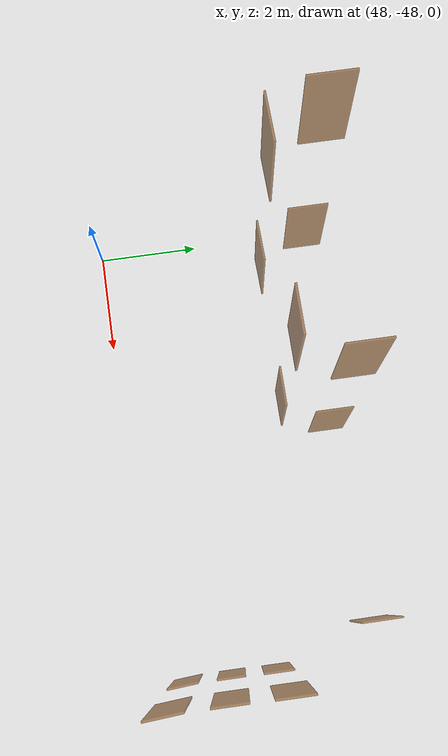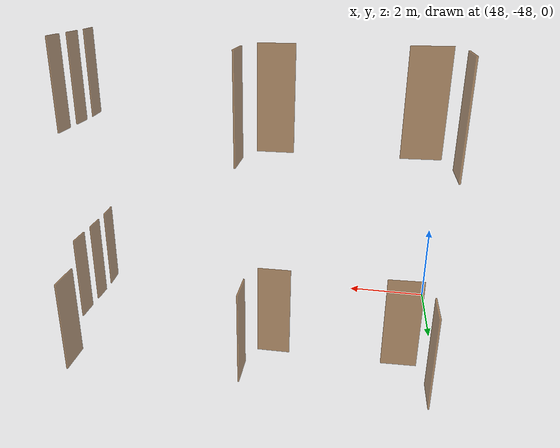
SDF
<sdf version="1.7">
 <world name="sim_world">
  <model name="null19">
   <pose>48.2611852223337 -43.68580500761547 0.0 0 0 1.5707963267948966</pose>
   <link name="right">
    <pose>0 0 1.11 0 0 0</pose>
    <visual name="right_visual">
     <geometry><box><size>0.796915190014486 0.03 2.2</size></box></geometry>
     <material>
      <ambient>0.5 0.25 0 0.6</ambient>
      <diffuse>0.5 0.25 0 0.6</diffuse>
      <pbr><metal><metalness>0.0</metalness></metal></pbr>
     </material>
    </visual>
    <collision name="right_collision">
     <geometry><box><size>0.796915190014486 0.03 2.2</size></box></geometry>
     <surface><contact><collide_bitmask>0x02</collide_bitmask></contact></surface>
    </collision>
    <inertial>
     <mass>50.0</mass>
     <inertia><ixx>20.17041666666667</ixx><iyy>22.812807583649274</iyy><izz>2.6498909169826015</izz></inertia>
    </inertial>
   </link>
   <joint name="right_joint" type="revolute">
    <parent>world</parent>
    <child>right</child>
    <axis><xyz>0 0 -1</xyz><limit><lower>0</lower><upper>1.57</upper></limit></axis>
    <pose>0.403457595007243 0 0 0 0 0</pose>
   </joint>
   <plugin name="register_component" filename="libregister_component.so">
    <component name="Door">
     <v_max_door>0.5</v_max_door>
     <a_max_door>0.3</a_max_door>
     <a_nom_door>0.15</a_nom_door>
     <dx_min_door>0.01</dx_min_door>
     <f_max_door>500.0</f_max_door>
     <ros_interface>true</ros_interface>
     <door name="null19" type="SwingDoor" left_joint_name="empty_joint" right_joint_name="right_joint"/>
    </component>
   </plugin>
  </model>
  <model name="null20">
   <pose>48.8182007132509 -44.70042302834432 0.0 0 0 -3.0972892206543503</pose>
   <link name="right">
    <pose>0 0 1.11 0 0 0</pose>
    <visual name="right_visual">
     <geometry><box><size>0.8088253046427424 0.03 2.2</size></box></geometry>
     <material>
      <ambient>0.5 0.25 0 0.6</ambient>
      <diffuse>0.5 0.25 0 0.6</diffuse>
      <pbr><metal><metalness>0.0</metalness></metal></pbr>
     </material>
    </visual>
    <collision name="right_collision">
     <geometry><box><size>0.8088253046427424 0.03 2.2</size></box></geometry>
     <surface><contact><collide_bitmask>0x02</collide_bitmask></contact></surface>
    </collision>
    <inertial>
     <mass>50.0</mass>
     <inertia><ixx>20.17041666666667</ixx><iyy>22.892493222626776</iyy><izz>2.7295765559601044</izz></inertia>
    </inertial>
   </link>
   <joint name="right_joint" type="revolute">
    <parent>world</parent>
    <child>right</child>
    <axis><xyz>0 0 -1</xyz><limit><lower>0</lower><upper>1.57</upper></limit></axis>
    <pose>0.4094126523213712 0 0 0 0 0</pose>
   </joint>
   <plugin name="register_component" filename="libregister_component.so">
    <component name="Door">
     <v_max_door>0.5</v_max_door>
     <a_max_door>0.3</a_max_door>
     <a_nom_door>0.15</a_nom_door>
     <dx_min_door>0.01</dx_min_door>
     <f_max_door>500.0</f_max_door>
     <ros_interface>true</ros_interface>
     <door name="null20" type="SwingDoor" left_joint_name="empty_joint" right_joint_name="right_joint"/>
    </component>
   </plugin>
  </model>
  <model name="null21">
   <pose>51.75311982243029 -44.69091505999482 0.0 0 0 -3.123357482783802</pose>
   <link name="right">
    <pose>0 0 1.11 0 0 0</pose>
    <visual name="right_visual">
     <geometry><box><size>0.7636958146948669 0.03 2.2</size></box></geometry>
     <material>
      <ambient>0.5 0.25 0 0.6</ambient>
      <diffuse>0.5 0.25 0 0.6</diffuse>
      <pbr><metal><metalness>0.0</metalness></metal></pbr>
     </material>
    </visual>
    <collision name="right_collision">
     <geometry><box><size>0.7636958146948669 0.03 2.2</size></box></geometry>
     <surface><contact><collide_bitmask>0x02</collide_bitmask></contact></surface>
    </collision>
    <inertial>
     <mass>50.0</mass>
     <inertia><ixx>20.17041666666667</ixx><iyy>22.59679707242691</iyy><izz>2.4338804057602355</izz></inertia>
    </inertial>
   </link>
   <joint name="right_joint" type="revolute">
    <parent>world</parent>
    <child>right</child>
    <axis><xyz>0 0 -1</xyz><limit><lower>0</lower><upper>1.57</upper></limit></axis>
    <pose>0.38684790734743346 0 0 0 0 0</pose>
   </joint>
   <plugin name="register_component" filename="libregister_component.so">
    <component name="Door">
     <v_max_door>0.5</v_max_door>
     <a_max_door>0.3</a_max_door>
     <a_nom_door>0.15</a_nom_door>
     <dx_min_door>0.01</dx_min_door>
     <f_max_door>500.0</f_max_door>
     <ros_interface>true</ros_interface>
     <door name="null21" type="SwingDoor" left_joint_name="empty_joint" right_joint_name="right_joint"/>
    </component>
   </plugin>
  </model>
  <model name="null22">
   <pose>52.343188825736505 -43.78970550540514 0.0 0 0 -1.5707963267948966</pose>
   <link name="right">
    <pose>0 0 1.11 0 0 0</pose>
    <visual name="right_visual">
     <geometry><box><size>0.7216087150339925 0.03 2.2</size></box></geometry>
     <material>
      <ambient>0.5 0.25 0 0.6</ambient>
      <diffuse>0.5 0.25 0 0.6</diffuse>
      <pbr><metal><metalness>0.0</metalness></metal></pbr>
     </material>
    </visual>
    <collision name="right_collision">
     <geometry><box><size>0.7216087150339925 0.03 2.2</size></box></geometry>
     <surface><contact><collide_bitmask>0x02</collide_bitmask></contact></surface>
    </collision>
    <inertial>
     <mass>50.0</mass>
     <inertia><ixx>20.17041666666667</ixx><iyy>22.33632974005421</iyy><izz>2.173413073387541</izz></inertia>
    </inertial>
   </link>
   <joint name="right_joint" type="revolute">
    <parent>world</parent>
    <child>right</child>
    <axis><xyz>0 0 -1</xyz><limit><lower>0</lower><upper>1.57</upper></limit></axis>
    <pose>0.36580435751699625 0 0 0 0 0</pose>
   </joint>
   <plugin name="register_component" filename="libregister_component.so">
    <component name="Door">
     <v_max_door>0.5</v_max_door>
     <a_max_door>0.3</a_max_door>
     <a_nom_door>0.15</a_nom_door>
     <dx_min_door>0.01</dx_min_door>
     <f_max_door>500.0</f_max_door>
     <ros_interface>true</ros_interface>
     <door name="null22" type="SwingDoor" left_joint_name="empty_joint" right_joint_name="right_joint"/>
    </component>
   </plugin>
  </model>
  <model name="null23">
   <pose>56.97331698800107 -47.289647553772454 0.0 0 0 -1.4940207357541395</pose>
   <link name="right">
    <pose>0 0 1.11 0 0 0</pose>
    <visual name="right_visual">
     <geometry><box><size>0.5714183394116297 0.03 2.2</size></box></geometry>
     <material>
      <ambient>0.5 0.25 0 0.6</ambient>
      <diffuse>0.5 0.25 0 0.6</diffuse>
      <pbr><metal><metalness>0.0</metalness></metal></pbr>
     </material>
    </visual>
    <collision name="right_collision">
     <geometry><box><size>0.5714183394116297 0.03 2.2</size></box></geometry>
     <surface><contact><collide_bitmask>0x02</collide_bitmask></contact></surface>
    </collision>
    <inertial>
     <mass>50.0</mass>
     <inertia><ixx>20.17041666666667</ixx><iyy>21.527162160899774</iyy><izz>1.3642454942331017</izz></inertia>
    </inertial>
   </link>
   <joint name="right_joint" type="revolute">
    <parent>world</parent>
    <child>right</child>
    <axis><xyz>0 0 -1</xyz><limit><lower>0</lower><upper>1.57</upper></limit></axis>
    <pose>0.29070916970581484 0 0 0 0 0</pose>
   </joint>
   <plugin name="register_component" filename="libregister_component.so">
    <component name="Door">
     <v_max_door>0.5</v_max_door>
     <a_max_door>0.3</a_max_door>
     <a_nom_door>0.15</a_nom_door>
     <dx_min_door>0.01</dx_min_door>
     <f_max_door>500.0</f_max_door>
     <ros_interface>true</ros_interface>
     <door name="null23" type="SwingDoor" left_joint_name="empty_joint" right_joint_name="right_joint"/>
    </component>
   </plugin>
  </model>
  <model name="null24">
   <pose>56.951019540101825 -46.39776366135446 0.0 0 0 -1.5707963267948966</pose>
   <link name="right">
    <pose>0 0 1.11 0 0 0</pose>
    <visual name="right_visual">
     <geometry><box><size>0.5251387495820816 0.03 2.2</size></box></geometry>
     <material>
      <ambient>0.5 0.25 0 0.6</ambient>
      <diffuse>0.5 0.25 0 0.6</diffuse>
      <pbr><metal><metalness>0.0</metalness></metal></pbr>
     </material>
    </visual>
    <collision name="right_collision">
     <geometry><box><size>0.5251387495820816 0.03 2.2</size></box></geometry>
     <surface><contact><collide_bitmask>0x02</collide_bitmask></contact></surface>
    </collision>
    <inertial>
     <mass>50.0</mass>
     <inertia><ixx>20.17041666666667</ixx><iyy>21.31571127630264</iyy><izz>1.1527946096359678</izz></inertia>
    </inertial>
   </link>
   <joint name="right_joint" type="revolute">
    <parent>world</parent>
    <child>right</child>
    <axis><xyz>0 0 -1</xyz><limit><lower>0</lower><upper>1.57</upper></limit></axis>
    <pose>0.2675693747910408 0 0 0 0 0</pose>
   </joint>
   <plugin name="register_component" filename="libregister_component.so">
    <component name="Door">
     <v_max_door>0.5</v_max_door>
     <a_max_door>0.3</a_max_door>
     <a_nom_door>0.15</a_nom_door>
     <dx_min_door>0.01</dx_min_door>
     <f_max_door>500.0</f_max_door>
     <ros_interface>true</ros_interface>
     <door name="null24" type="SwingDoor" left_joint_name="empty_joint" right_joint_name="right_joint"/>
    </component>
   </plugin>
  </model>
  <model name="null25">
   <pose>56.96180365169586 -45.52409636316359 0.0 0 0 -1.5721212843079049</pose>
   <link name="right">
    <pose>0 0 1.11 0 0 0</pose>
    <visual name="right_visual">
     <geometry><box><size>0.5615443926086123 0.03 2.2</size></box></geometry>
     <material>
      <ambient>0.5 0.25 0 0.6</ambient>
      <diffuse>0.5 0.25 0 0.6</diffuse>
      <pbr><metal><metalness>0.0</metalness></metal></pbr>
     </material>
    </visual>
    <collision name="right_collision">
     <geometry><box><size>0.5615443926086123 0.03 2.2</size></box></geometry>
     <surface><contact><collide_bitmask>0x02</collide_bitmask></contact></surface>
    </collision>
    <inertial>
     <mass>50.0</mass>
     <inertia><ixx>20.17041666666667</ixx><iyy>21.480550436959067</iyy><izz>1.3176337702923973</izz></inertia>
    </inertial>
   </link>
   <joint name="right_joint" type="revolute">
    <parent>world</parent>
    <child>right</child>
    <axis><xyz>0 0 -1</xyz><limit><lower>0</lower><upper>1.57</upper></limit></axis>
    <pose>0.28577219630430617 0 0 0 0 0</pose>
   </joint>
   <plugin name="register_component" filename="libregister_component.so">
    <component name="Door">
     <v_max_door>0.5</v_max_door>
     <a_max_door>0.3</a_max_door>
     <a_nom_door>0.15</a_nom_door>
     <dx_min_door>0.01</dx_min_door>
     <f_max_door>500.0</f_max_door>
     <ros_interface>true</ros_interface>
     <door name="null25" type="SwingDoor" left_joint_name="empty_joint" right_joint_name="right_joint"/>
    </component>
   </plugin>
  </model>
  <model name="null26">
   <pose>56.31304608269256 -43.52628710204691 0.0 0 0 -1.5661018673034073</pose>
   <link name="right">
    <pose>0 0 1.11 0 0 0</pose>
    <visual name="right_visual">
     <geometry><box><size>0.7607148708667022 0.03 2.2</size></box></geometry>
     <material>
      <ambient>0.5 0.25 0 0.6</ambient>
      <diffuse>0.5 0.25 0 0.6</diffuse>
      <pbr><metal><metalness>0.0</metalness></metal></pbr>
     </material>
    </visual>
    <collision name="right_collision">
     <geometry><box><size>0.7607148708667022 0.03 2.2</size></box></geometry>
     <surface><contact><collide_bitmask>0x02</collide_bitmask></contact></surface>
    </collision>
    <inertial>
     <mass>50.0</mass>
     <inertia><ixx>20.17041666666667</ixx><iyy>22.577862978157267</iyy><izz>2.414946311490598</izz></inertia>
    </inertial>
   </link>
   <joint name="right_joint" type="revolute">
    <parent>world</parent>
    <child>right</child>
    <axis><xyz>0 0 -1</xyz><limit><lower>0</lower><upper>1.57</upper></limit></axis>
    <pose>0.3853574354333511 0 0 0 0 0</pose>
   </joint>
   <plugin name="register_component" filename="libregister_component.so">
    <component name="Door">
     <v_max_door>0.5</v_max_door>
     <a_max_door>0.3</a_max_door>
     <a_nom_door>0.15</a_nom_door>
     <dx_min_door>0.01</dx_min_door>
     <f_max_door>500.0</f_max_door>
     <ros_interface>true</ros_interface>
     <door name="null26" type="SwingDoor" left_joint_name="empty_joint" right_joint_name="right_joint"/>
    </component>
   </plugin>
  </model>
  <model name="anull19">
   <pose>48.26330407107159 -43.65876146973375 5.0 0 0 1.5707971886137382</pose>
   <link name="right">
    <pose>0 0 1.11 0 0 0</pose>
    <visual name="right_visual">
     <geometry><box><size>0.7969186670929452 0.03 2.2</size></box></geometry>
     <material>
      <ambient>0.5 0.25 0 0.6</ambient>
      <diffuse>0.5 0.25 0 0.6</diffuse>
      <pbr><metal><metalness>0.0</metalness></metal></pbr>
     </material>
    </visual>
    <collision name="right_collision">
     <geometry><box><size>0.7969186670929452 0.03 2.2</size></box></geometry>
     <surface><contact><collide_bitmask>0x02</collide_bitmask></contact></surface>
    </collision>
    <inertial>
     <mass>50.0</mass>
     <inertia><ixx>20.17041666666667</ixx><iyy>22.812830674838324</iyy><izz>2.6499140081716526</izz></inertia>
    </inertial>
   </link>
   <joint name="right_joint" type="revolute">
    <parent>world</parent>
    <child>right</child>
    <axis><xyz>0 0 -1</xyz><limit><lower>0</lower><upper>1.57</upper></limit></axis>
    <pose>0.4034593335464726 0 0 0 0 0</pose>
   </joint>
   <plugin name="register_component" filename="libregister_component.so">
    <component name="Door">
     <v_max_door>0.5</v_max_door>
     <a_max_door>0.3</a_max_door>
     <a_nom_door>0.15</a_nom_door>
     <dx_min_door>0.01</dx_min_door>
     <f_max_door>500.0</f_max_door>
     <ros_interface>true</ros_interface>
     <door name="anull19" type="SwingDoor" left_joint_name="empty_joint" right_joint_name="right_joint"/>
    </component>
   </plugin>
  </model>
  <model name="anull20">
   <pose>48.82032283664487 -44.6733833825045 5.0 0 0 -3.09728835883551</pose>
   <link name="right">
    <pose>0 0 1.11 0 0 0</pose>
    <visual name="right_visual">
     <geometry><box><size>0.8088288330430824 0.03 2.2</size></box></geometry>
     <material>
      <ambient>0.5 0.25 0 0.6</ambient>
      <diffuse>0.5 0.25 0 0.6</diffuse>
      <pbr><metal><metalness>0.0</metalness></metal></pbr>
     </material>
    </visual>
    <collision name="right_collision">
     <geometry><box><size>0.8088288330430824 0.03 2.2</size></box></geometry>
     <surface><contact><collide_bitmask>0x02</collide_bitmask></contact></surface>
    </collision>
    <inertial>
     <mass>50.0</mass>
     <inertia><ixx>20.17041666666667</ixx><iyy>22.892517004840983</iyy><izz>2.729600338174311</izz></inertia>
    </inertial>
   </link>
   <joint name="right_joint" type="revolute">
    <parent>world</parent>
    <child>right</child>
    <axis><xyz>0 0 -1</xyz><limit><lower>0</lower><upper>1.57</upper></limit></axis>
    <pose>0.4094144165215412 0 0 0 0 0</pose>
   </joint>
   <plugin name="register_component" filename="libregister_component.so">
    <component name="Door">
     <v_max_door>0.5</v_max_door>
     <a_max_door>0.3</a_max_door>
     <a_nom_door>0.15</a_nom_door>
     <dx_min_door>0.01</dx_min_door>
     <f_max_door>500.0</f_max_door>
     <ros_interface>true</ros_interface>
     <door name="anull20" type="SwingDoor" left_joint_name="empty_joint" right_joint_name="right_joint"/>
    </component>
   </plugin>
  </model>
  <model name="anull21">
   <pose>51.7552545844897 -44.66387284380473 5.0 0 0 -3.12335662096496</pose>
   <link name="right">
    <pose>0 0 1.11 0 0 0</pose>
    <visual name="right_visual">
     <geometry><box><size>0.7636991486277119 0.03 2.2</size></box></geometry>
     <material>
      <ambient>0.5 0.25 0 0.6</ambient>
      <diffuse>0.5 0.25 0 0.6</diffuse>
      <pbr><metal><metalness>0.0</metalness></metal></pbr>
     </material>
    </visual>
    <collision name="right_collision">
     <geometry><box><size>0.7636991486277119 0.03 2.2</size></box></geometry>
     <surface><contact><collide_bitmask>0x02</collide_bitmask></contact></surface>
    </collision>
    <inertial>
     <mass>50.0</mass>
     <inertia><ixx>20.17041666666667</ixx><iyy>22.596818290061222</iyy><izz>2.4339016233945503</izz></inertia>
    </inertial>
   </link>
   <joint name="right_joint" type="revolute">
    <parent>world</parent>
    <child>right</child>
    <axis><xyz>0 0 -1</xyz><limit><lower>0</lower><upper>1.57</upper></limit></axis>
    <pose>0.38684957431385597 0 0 0 0 0</pose>
   </joint>
   <plugin name="register_component" filename="libregister_component.so">
    <component name="Door">
     <v_max_door>0.5</v_max_door>
     <a_max_door>0.3</a_max_door>
     <a_nom_door>0.15</a_nom_door>
     <dx_min_door>0.01</dx_min_door>
     <f_max_door>500.0</f_max_door>
     <ros_interface>true</ros_interface>
     <door name="anull21" type="SwingDoor" left_joint_name="empty_joint" right_joint_name="right_joint"/>
    </component>
   </plugin>
  </model>
  <model name="anull22">
   <pose>52.34532535377948 -43.762658897278264 5.0 0 0 -1.570795464976053</pose>
   <link name="right">
    <pose>0 0 1.11 0 0 0</pose>
    <visual name="right_visual">
     <geometry><box><size>0.7216118676092901 0.03 2.2</size></box></geometry>
     <material>
      <ambient>0.5 0.25 0 0.6</ambient>
      <diffuse>0.5 0.25 0 0.6</diffuse>
      <pbr><metal><metalness>0.0</metalness></metal></pbr>
     </material>
    </visual>
    <collision name="right_collision">
     <geometry><box><size>0.7216118676092901 0.03 2.2</size></box></geometry>
     <surface><contact><collide_bitmask>0x02</collide_bitmask></contact></surface>
    </collision>
    <inertial>
     <mass>50.0</mass>
     <inertia><ixx>20.17041666666667</ixx><iyy>22.336348697810703</iyy><izz>2.173432031144032</izz></inertia>
    </inertial>
   </link>
   <joint name="right_joint" type="revolute">
    <parent>world</parent>
    <child>right</child>
    <axis><xyz>0 0 -1</xyz><limit><lower>0</lower><upper>1.57</upper></limit></axis>
    <pose>0.36580593380464504 0 0 0 0 0</pose>
   </joint>
   <plugin name="register_component" filename="libregister_component.so">
    <component name="Door">
     <v_max_door>0.5</v_max_door>
     <a_max_door>0.3</a_max_door>
     <a_nom_door>0.15</a_nom_door>
     <dx_min_door>0.01</dx_min_door>
     <f_max_door>500.0</f_max_door>
     <ros_interface>true</ros_interface>
     <door name="anull22" type="SwingDoor" left_joint_name="empty_joint" right_joint_name="right_joint"/>
    </component>
   </plugin>
  </model>
  <model name="anull23">
   <pose>56.97547648405782 -47.26261203689663 5.0 0 0 -1.4940198739352877</pose>
   <link name="right">
    <pose>0 0 1.11 0 0 0</pose>
    <visual name="right_visual">
     <geometry><box><size>0.5714208448015486 0.03 2.2</size></box></geometry>
     <material>
      <ambient>0.5 0.25 0 0.6</ambient>
      <diffuse>0.5 0.25 0 0.6</diffuse>
      <pbr><metal><metalness>0.0</metalness></metal></pbr>
     </material>
    </visual>
    <collision name="right_collision">
     <geometry><box><size>0.5714208448015486 0.03 2.2</size></box></geometry>
     <surface><contact><collide_bitmask>0x02</collide_bitmask></contact></surface>
    </collision>
    <inertial>
     <mass>50.0</mass>
     <inertia><ixx>20.17041666666667</ixx><iyy>21.527174091140488</iyy><izz>1.364257424473815</izz></inertia>
    </inertial>
   </link>
   <joint name="right_joint" type="revolute">
    <parent>world</parent>
    <child>right</child>
    <axis><xyz>0 0 -1</xyz><limit><lower>0</lower><upper>1.57</upper></limit></axis>
    <pose>0.2907104224007743 0 0 0 0 0</pose>
   </joint>
   <plugin name="register_component" filename="libregister_component.so">
    <component name="Door">
     <v_max_door>0.5</v_max_door>
     <a_max_door>0.3</a_max_door>
     <a_nom_door>0.15</a_nom_door>
     <dx_min_door>0.01</dx_min_door>
     <f_max_door>500.0</f_max_door>
     <ros_interface>true</ros_interface>
     <door name="anull23" type="SwingDoor" left_joint_name="empty_joint" right_joint_name="right_joint"/>
    </component>
   </plugin>
  </model>
  <model name="anull24">
   <pose>56.95317817143098 -46.37072432047828 5.0 0 0 -1.5707954649760407</pose>
   <link name="right">
    <pose>0 0 1.11 0 0 0</pose>
    <visual name="right_visual">
     <geometry><box><size>0.5251410555486067 0.03 2.2</size></box></geometry>
     <material>
      <ambient>0.5 0.25 0 0.6</ambient>
      <diffuse>0.5 0.25 0 0.6</diffuse>
      <pbr><metal><metalness>0.0</metalness></metal></pbr>
     </material>
    </visual>
    <collision name="right_collision">
     <geometry><box><size>0.5251410555486067 0.03 2.2</size></box></geometry>
     <surface><contact><collide_bitmask>0x02</collide_bitmask></contact></surface>
    </collision>
    <inertial>
     <mass>50.0</mass>
     <inertia><ixx>20.17041666666667</ixx><iyy>21.315721367594605</iyy><izz>1.152804700927937</izz></inertia>
    </inertial>
   </link>
   <joint name="right_joint" type="revolute">
    <parent>world</parent>
    <child>right</child>
    <axis><xyz>0 0 -1</xyz><limit><lower>0</lower><upper>1.57</upper></limit></axis>
    <pose>0.26757052777430335 0 0 0 0 0</pose>
   </joint>
   <plugin name="register_component" filename="libregister_component.so">
    <component name="Door">
     <v_max_door>0.5</v_max_door>
     <a_max_door>0.3</a_max_door>
     <a_nom_door>0.15</a_nom_door>
     <dx_min_door>0.01</dx_min_door>
     <f_max_door>500.0</f_max_door>
     <ros_interface>true</ros_interface>
     <door name="anull24" type="SwingDoor" left_joint_name="empty_joint" right_joint_name="right_joint"/>
    </component>
   </plugin>
  </model>
  <model name="anull25">
   <pose>56.963961576548655 -45.49705324827376 5.0 0 0 -1.572120422489083</pose>
   <link name="right">
    <pose>0 0 1.11 0 0 0</pose>
    <visual name="right_visual">
     <geometry><box><size>0.5615468554507242 0.03 2.2</size></box></geometry>
     <material>
      <ambient>0.5 0.25 0 0.6</ambient>
      <diffuse>0.5 0.25 0 0.6</diffuse>
      <pbr><metal><metalness>0.0</metalness></metal></pbr>
     </material>
    </visual>
    <collision name="right_collision">
     <geometry><box><size>0.5615468554507242 0.03 2.2</size></box></geometry>
     <surface><contact><collide_bitmask>0x02</collide_bitmask></contact></surface>
    </collision>
    <inertial>
     <mass>50.0</mass>
     <inertia><ixx>20.17041666666667</ixx><iyy>21.480561961944158</iyy><izz>1.317645295277486</izz></inertia>
    </inertial>
   </link>
   <joint name="right_joint" type="revolute">
    <parent>world</parent>
    <child>right</child>
    <axis><xyz>0 0 -1</xyz><limit><lower>0</lower><upper>1.57</upper></limit></axis>
    <pose>0.28577342772536213 0 0 0 0 0</pose>
   </joint>
   <plugin name="register_component" filename="libregister_component.so">
    <component name="Door">
     <v_max_door>0.5</v_max_door>
     <a_max_door>0.3</a_max_door>
     <a_nom_door>0.15</a_nom_door>
     <dx_min_door>0.01</dx_min_door>
     <f_max_door>500.0</f_max_door>
     <ros_interface>true</ros_interface>
     <door name="anull25" type="SwingDoor" left_joint_name="empty_joint" right_joint_name="right_joint"/>
    </component>
   </plugin>
  </model>
 </world>
</sdf>
